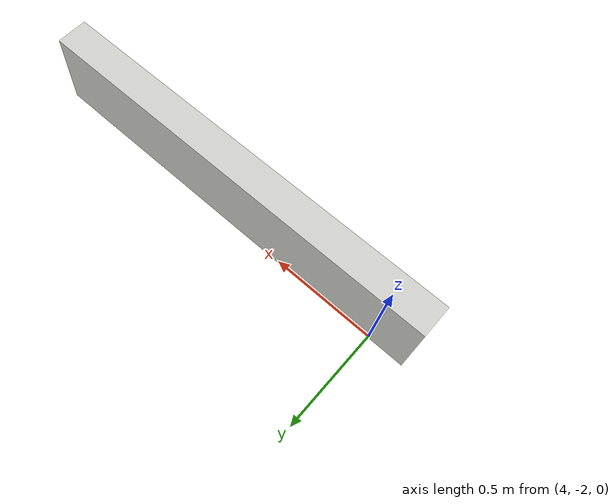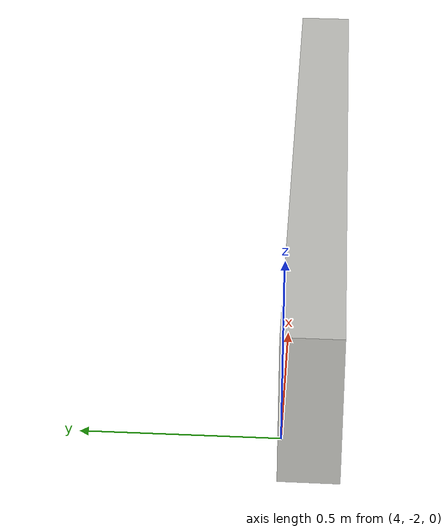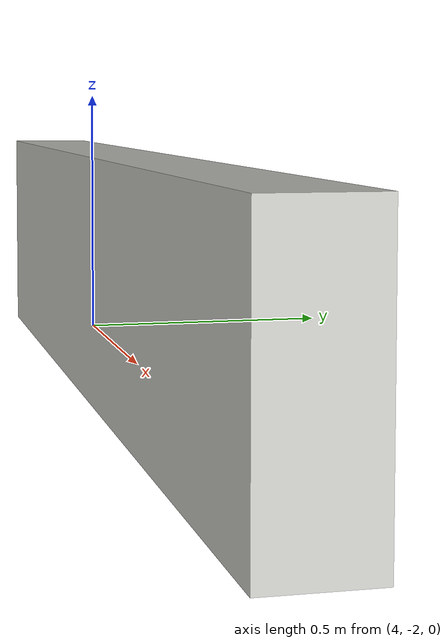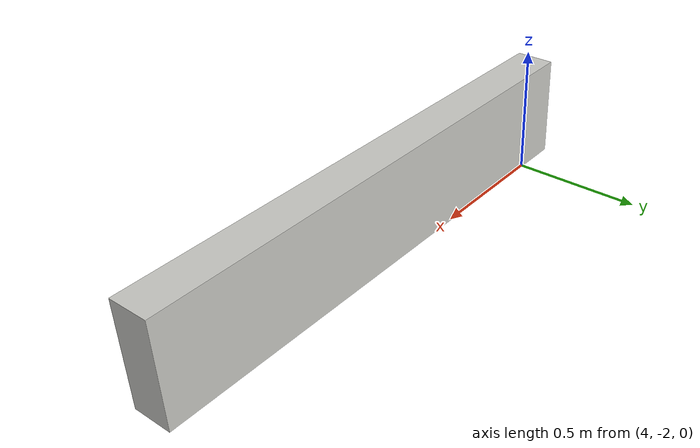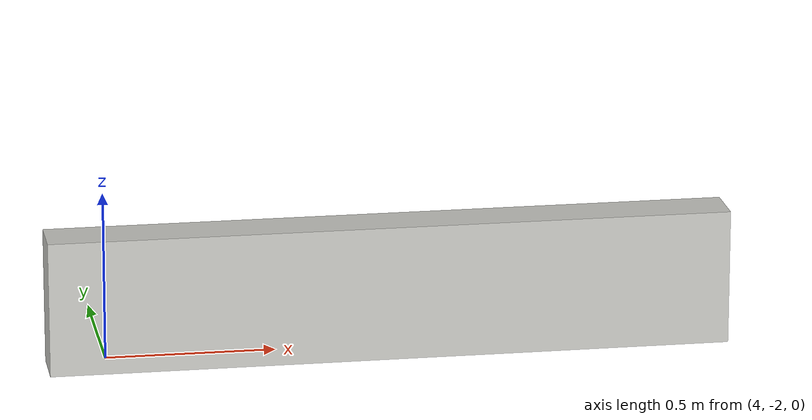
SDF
<?xml version='1.0'?>
<sdf version='1.7'>
  <model name='last_wall'>
    <pose>2.9125 -1.0725 0 0 -0 0</pose>
    <link name='Wall_0'>
      <collision name='Wall_0_Collision'>
        <geometry>
          <box>
            <size>2 0.15 0.4</size>
          </box>
        </geometry>
        <pose>0 0 0.2 0 -0 0</pose>
      </collision>
      <visual name='Wall_0_Visual'>
        <pose>0 0 0.2 0 -0 0</pose>
        <geometry>
          <box>
            <size>2 0.15 0.4</size>
          </box>
        </geometry>
        <material>
          <script>
            <uri>file://media/materials/scripts/gazebo.material</uri>
            <name>Gazebo/CeilingTiled</name>
          </script>
          <ambient>1 1 1 1</ambient>
        </material>
        <meta>
          <layer>0</layer>
        </meta>
      </visual>
      <pose>1.9125 -0.9975 0 0 -0 0</pose>
    </link>
    <static>1</static>
  </model>
</sdf>
